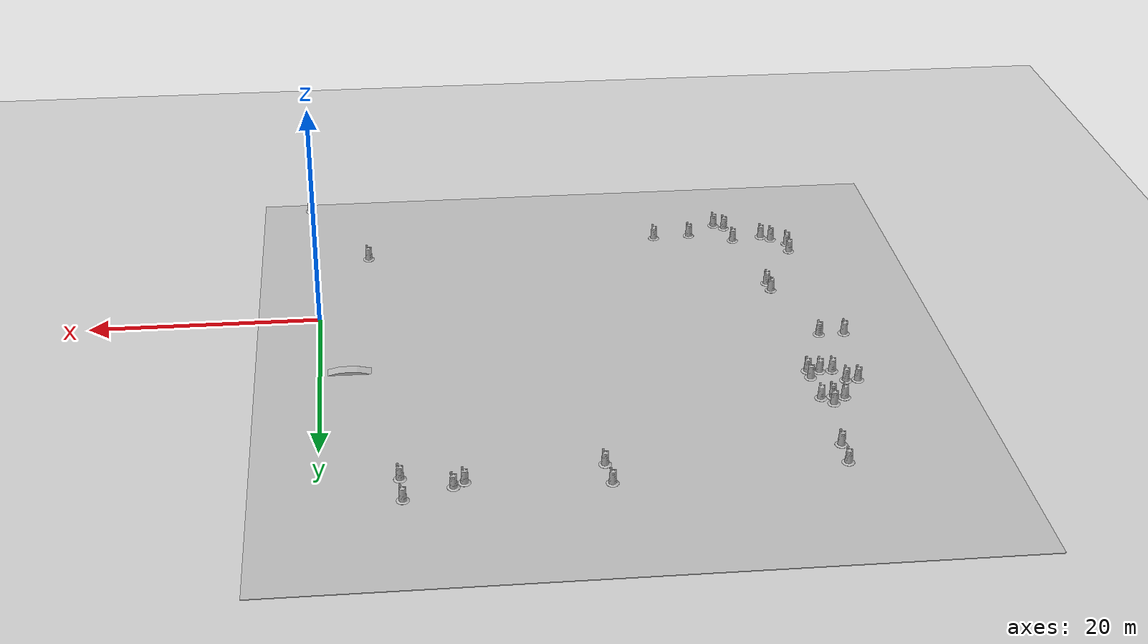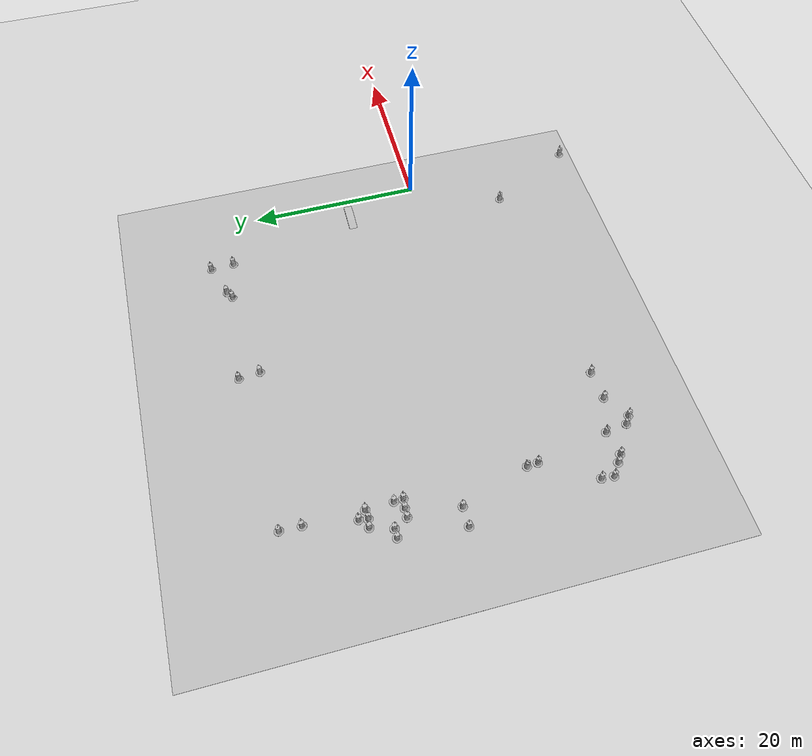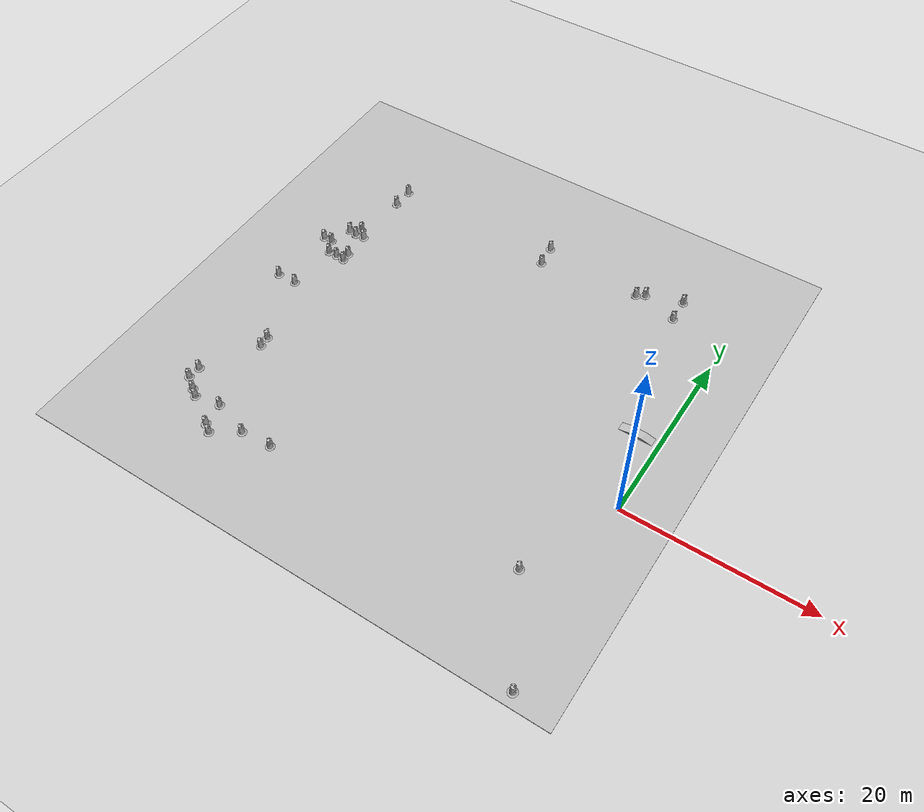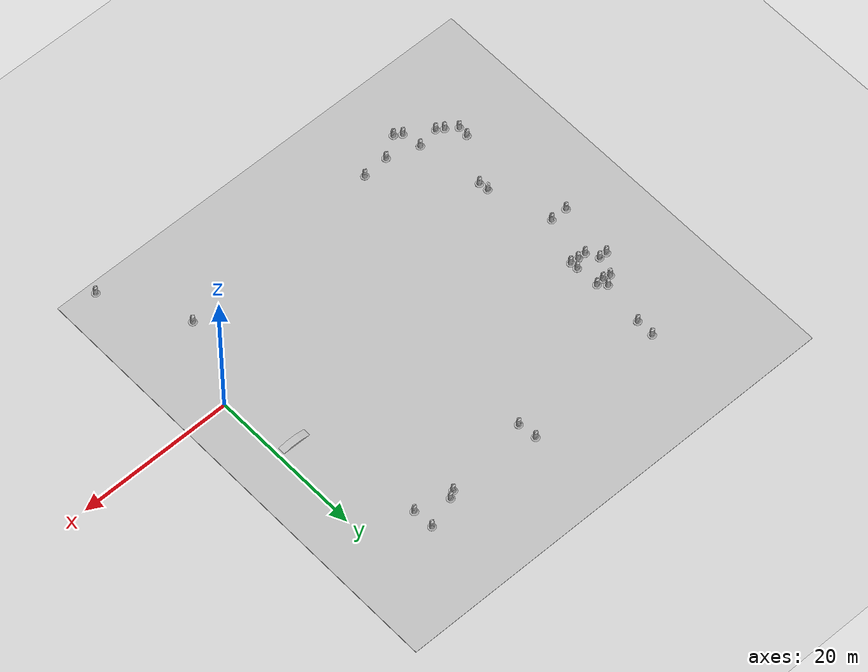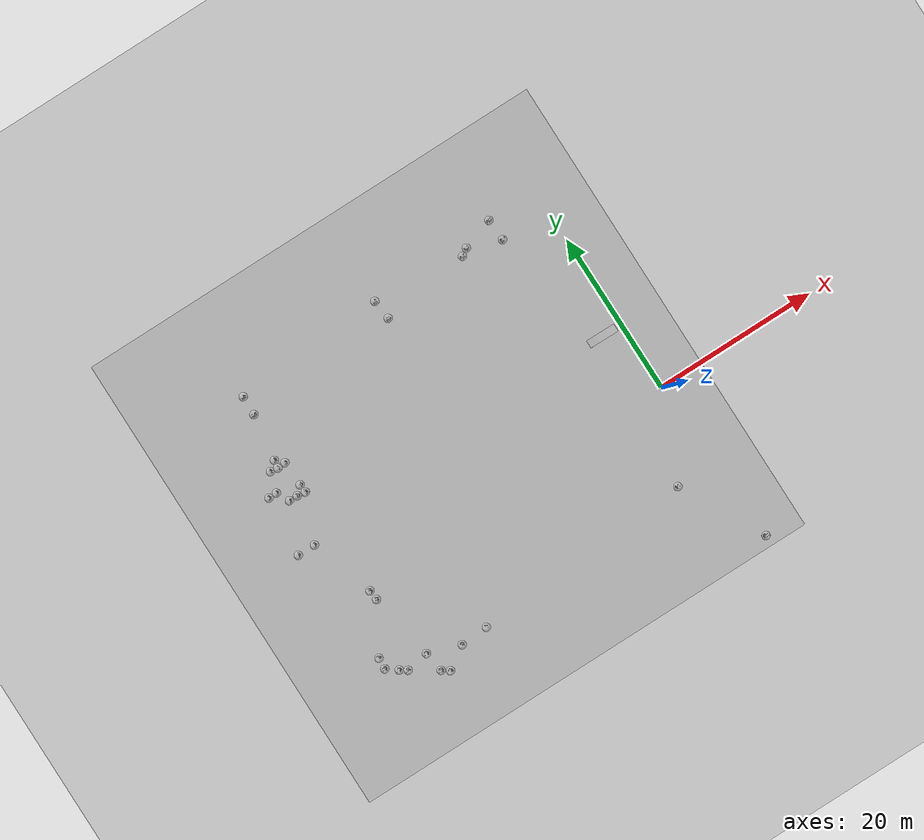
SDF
<sdf version="1.7">
 <world name="default">
  <light name="sun" type="directional">
   <pose>0 0 10 0 -0 0</pose>
   <diffuse>0.8 0.8 0.8 1</diffuse>
   <specular>0.2 0.2 0.2 1</specular>
   <attenuation>
    <range>1000</range>
    <constant>0.9</constant>
    <linear>0.01</linear>
    <quadratic>0.001</quadratic>
   </attenuation>
   <direction>-0.5 0.1 -0.9</direction>
   <spot><inner_angle>0</inner_angle><outer_angle>0</outer_angle><falloff>0</falloff></spot>
  </light>
  <model name="ground_plane">
   <static>1</static>
   <link name="link">
    <collision name="collision">
     <geometry><plane><normal>0 0 1</normal><size>100 100</size></plane></geometry>
     <surface>
      <contact><collide_bitmask>65535</collide_bitmask></contact>
      <friction><ode><mu>100</mu><mu2>50</mu2></ode></friction>
     </surface>
    </collision>
    <visual name="visual">
     <cast_shadows>0</cast_shadows>
     <geometry><plane><normal>0 0 1</normal><size>100 100</size></plane></geometry>
     <material>
      <script><uri>file://media/materials/scripts/gazebo.material</uri><name>Gazebo/Grey</name></script>
     </material>
    </visual>
   </link>
  </model>
  <gravity>0 0 -9.8</gravity>
  <magnetic_field>6e-06 2.3e-05 -4.2e-05</magnetic_field>
  <atmosphere type="adiabatic"/>
  <physics type="ode">
   <max_step_size>0.001</max_step_size>
   <real_time_factor>1</real_time_factor>
   <real_time_update_rate>1000</real_time_update_rate>
  </physics>
  <scene><ambient>0.4 0.4 0.4 1</ambient><background>0.7 0.7 0.7 1</background><shadows>1</shadows></scene>
  <spherical_coordinates>
   <surface_model>EARTH_WGS84</surface_model>
   <latitude_deg>0</latitude_deg>
   <longitude_deg>0</longitude_deg>
   <elevation>0</elevation>
   <heading_deg>0</heading_deg>
  </spherical_coordinates>
  <model name="igvc_track">
   <static>1</static>
   <link name="link">
    <collision name="collision"><geometry><box><size>58.9345 58.9345 0.0491121</size></box></geometry></collision>
    <visual name="visual">
     <cast_shadows>0</cast_shadows>
     <geometry><box><size>58.9345 58.9345 0.0491121</size></box></geometry>
     <material>
      <script>
       <uri>model://igvc_track/materials/scripts</uri>
       <uri>model://igvc_track/materials/textures</uri>
       <name>vrc/ground</name>
      </script>
     </material>
    </visual>
   </link>
   <link name="link2">
    <collision name="collision"><geometry><box><size>58.9345 58.9345 0.0491121</size></box></geometry></collision>
    <visual name="visual">
     <cast_shadows>0</cast_shadows>
     <geometry><box><size>58.9345 58.9345 0.0687569</size></box></geometry>
     <material>
      <script>
       <uri>model://igvc_track/materials/scripts</uri>
       <uri>model://igvc_track/materials/textures</uri>
       <name>vrc/track</name>
      </script>
     </material>
    </visual>
   </link>
   <pose>-24.0772 7.53186 0 0 -0 0</pose>
  </model>
  <model name="Construction Barrel">
   <link name="link">
    <inertial>
     <pose>0 0 0.4 0 -0 0</pose>
     <mass>500</mass>
     <inertia><ixx>51.2096</ixx><iyy>51.2096</iyy><izz>25</izz><ixy>0</ixy><ixz>0</ixz><iyz>0</iyz></inertia>
    </inertial>
    <collision name="collision">
     <geometry><mesh><uri>model://construction_barrel/meshes/construction_barrel.dae</uri></mesh></geometry>
    </collision>
    <visual name="visual">
     <geometry><mesh><uri>model://construction_barrel/meshes/construction_barrel.dae</uri></mesh></geometry>
    </visual>
   </link>
   <pose>0.974931 -20.6248 0.024555 3e-06 1e-06 0.000186</pose>
  </model>
  <model name="Construction Barrel_0">
   <link name="link">
    <inertial>
     <pose>0 0 0.4 0 -0 0</pose>
     <mass>500</mass>
     <inertia><ixx>51.2096</ixx><iyy>51.2096</iyy><izz>25</izz><ixy>0</ixy><ixz>0</ixz><iyz>0</iyz></inertia>
    </inertial>
    <collision name="collision">
     <geometry><mesh><uri>model://construction_barrel/meshes/construction_barrel.dae</uri></mesh></geometry>
    </collision>
    <visual name="visual">
     <geometry><mesh><uri>model://construction_barrel/meshes/construction_barrel.dae</uri></mesh></geometry>
    </visual>
   </link>
   <pose>-38.533 -13.6183 0.024556 -1e-06 -2e-06 0.007028</pose>
  </model>
  <model name="ramp">
   <static>1</static>
   <link name="link">
    <collision name="collision">
     <geometry><mesh><uri>model://ramp/meshes/ramp.dae</uri><scale>1 1 1</scale></mesh></geometry>
    </collision>
    <visual name="visual">
     <geometry><mesh><uri>model://ramp/meshes/ramp.dae</uri><scale>1 1 1</scale></mesh></geometry>
    </visual>
   </link>
   <pose>-2.50576 7.10959 0 0 0 -1.58093</pose>
  </model>
  <model name="Construction Barrel_1">
   <link name="link">
    <inertial>
     <pose>0 0 0.4 0 -0 0</pose>
     <mass>500</mass>
     <inertia><ixx>51.2096</ixx><iyy>51.2096</iyy><izz>25</izz><ixy>0</ixy><ixz>0</ixz><iyz>0</iyz></inertia>
    </inertial>
    <collision name="collision">
     <geometry><mesh><uri>model://construction_barrel/meshes/construction_barrel.dae</uri></mesh></geometry>
    </collision>
    <visual name="visual">
     <geometry><mesh><uri>model://construction_barrel/meshes/construction_barrel.dae</uri></mesh></geometry>
    </visual>
   </link>
   <pose>-38.9074 -11.1085 0.024555 3e-06 -0 0.000167</pose>
  </model>
  <model name="Construction Barrel_2">
   <link name="link">
    <inertial>
     <pose>0 0 0.4 0 -0 0</pose>
     <mass>500</mass>
     <inertia><ixx>51.2096</ixx><iyy>51.2096</iyy><izz>25</izz><ixy>0</ixy><ixz>0</ixz><iyz>0</iyz></inertia>
    </inertial>
    <collision name="collision">
     <geometry><mesh><uri>model://construction_barrel/meshes/construction_barrel.dae</uri></mesh></geometry>
    </collision>
    <visual name="visual">
     <geometry><mesh><uri>model://construction_barrel/meshes/construction_barrel.dae</uri></mesh></geometry>
    </visual>
   </link>
   <pose>-43.7577 -8.63429 0.024555 3e-06 -0 0.11968</pose>
  </model>
  <model name="Construction Barrel_3">
   <link name="link">
    <inertial>
     <pose>0 0 0.4 0 -0 0</pose>
     <mass>500</mass>
     <inertia><ixx>51.2096</ixx><iyy>51.2096</iyy><izz>25</izz><ixy>0</ixy><ixz>0</ixz><iyz>0</iyz></inertia>
    </inertial>
    <collision name="collision">
     <geometry><mesh><uri>model://construction_barrel/meshes/construction_barrel.dae</uri></mesh></geometry>
    </collision>
    <visual name="visual">
     <geometry><mesh><uri>model://construction_barrel/meshes/construction_barrel.dae</uri></mesh></geometry>
    </visual>
   </link>
   <pose>-43.8611 -10.0318 0.024555 -2e-06 -4e-06 -0.057822</pose>
  </model>
  <model name="Construction Barrel_4">
   <link name="link">
    <inertial>
     <pose>0 0 0.4 0 -0 0</pose>
     <mass>500</mass>
     <inertia><ixx>51.2096</ixx><iyy>51.2096</iyy><izz>25</izz><ixy>0</ixy><ixz>0</ixz><iyz>0</iyz></inertia>
    </inertial>
    <collision name="collision">
     <geometry><mesh><uri>model://construction_barrel/meshes/construction_barrel.dae</uri></mesh></geometry>
    </collision>
    <visual name="visual">
     <geometry><mesh><uri>model://construction_barrel/meshes/construction_barrel.dae</uri></mesh></geometry>
    </visual>
   </link>
   <pose>-41.6909 -11.5921 0.024555 3e-06 -0 0.011299</pose>
  </model>
  <model name="Construction Barrel_5">
   <link name="link">
    <inertial>
     <pose>0 0 0.4 0 -0 0</pose>
     <mass>500</mass>
     <inertia><ixx>51.2096</ixx><iyy>51.2096</iyy><izz>25</izz><ixy>0</ixy><ixz>0</ixz><iyz>0</iyz></inertia>
    </inertial>
    <collision name="collision">
     <geometry><mesh><uri>model://construction_barrel/meshes/construction_barrel.dae</uri></mesh></geometry>
    </collision>
    <visual name="visual">
     <geometry><mesh><uri>model://construction_barrel/meshes/construction_barrel.dae</uri></mesh></geometry>
    </visual>
   </link>
   <pose>-42.5303 -11.0218 0.024555 5e-06 -0 -0.032403</pose>
  </model>
  <model name="Construction Barrel_6">
   <link name="link">
    <inertial>
     <pose>0 0 0.4 0 -0 0</pose>
     <mass>500</mass>
     <inertia><ixx>51.2096</ixx><iyy>51.2096</iyy><izz>25</izz><ixy>0</ixy><ixz>0</ixz><iyz>0</iyz></inertia>
    </inertial>
    <collision name="collision">
     <geometry><mesh><uri>model://construction_barrel/meshes/construction_barrel.dae</uri></mesh></geometry>
    </collision>
    <visual name="visual">
     <geometry><mesh><uri>model://construction_barrel/meshes/construction_barrel.dae</uri></mesh></geometry>
    </visual>
   </link>
   <pose>-43.4737 13.5254 0.024556 2e-06 -0 -0.332293</pose>
  </model>
  <model name="Construction Barrel_7">
   <link name="link">
    <inertial>
     <pose>0 0 0.4 0 -0 0</pose>
     <mass>500</mass>
     <inertia><ixx>51.2096</ixx><iyy>51.2096</iyy><izz>25</izz><ixy>0</ixy><ixz>0</ixz><iyz>0</iyz></inertia>
    </inertial>
    <collision name="collision">
     <geometry><mesh><uri>model://construction_barrel/meshes/construction_barrel.dae</uri></mesh></geometry>
    </collision>
    <visual name="visual">
     <geometry><mesh><uri>model://construction_barrel/meshes/construction_barrel.dae</uri></mesh></geometry>
    </visual>
   </link>
   <pose>-40.4928 -1.60632 0.024555 0 -3e-06 0.838788</pose>
  </model>
  <model name="Construction Barrel_8">
   <link name="link">
    <inertial>
     <pose>0 0 0.4 0 -0 0</pose>
     <mass>500</mass>
     <inertia><ixx>51.2096</ixx><iyy>51.2096</iyy><izz>25</izz><ixy>0</ixy><ixz>0</ixz><iyz>0</iyz></inertia>
    </inertial>
    <collision name="collision">
     <geometry><mesh><uri>model://construction_barrel/meshes/construction_barrel.dae</uri></mesh></geometry>
    </collision>
    <visual name="visual">
     <geometry><mesh><uri>model://construction_barrel/meshes/construction_barrel.dae</uri></mesh></geometry>
    </visual>
   </link>
   <pose>-45.1878 6.21229 0.024555 -2e-06 -3e-06 0.00016</pose>
  </model>
  <model name="Construction Barrel_9">
   <link name="link">
    <inertial>
     <pose>0 0 0.4 0 -0 0</pose>
     <mass>500</mass>
     <inertia><ixx>51.2096</ixx><iyy>51.2096</iyy><izz>25</izz><ixy>0</ixy><ixz>0</ixz><iyz>0</iyz></inertia>
    </inertial>
    <collision name="collision">
     <geometry><mesh><uri>model://construction_barrel/meshes/construction_barrel.dae</uri></mesh></geometry>
    </collision>
    <visual name="visual">
     <geometry><mesh><uri>model://construction_barrel/meshes/construction_barrel.dae</uri></mesh></geometry>
    </visual>
   </link>
   <pose>-40.3738 -2.85059 0.024555 3e-06 -0 0.000151</pose>
  </model>
  <model name="Construction Barrel_10">
   <link name="link">
    <inertial>
     <pose>0 0 0.4 0 -0 0</pose>
     <mass>500</mass>
     <inertia><ixx>51.2096</ixx><iyy>51.2096</iyy><izz>25</izz><ixy>0</ixy><ixz>0</ixz><iyz>0</iyz></inertia>
    </inertial>
    <collision name="collision">
     <geometry><mesh><uri>model://construction_barrel/meshes/construction_barrel.dae</uri></mesh></geometry>
    </collision>
    <visual name="visual">
     <geometry><mesh><uri>model://construction_barrel/meshes/construction_barrel.dae</uri></mesh></geometry>
    </visual>
   </link>
   <pose>-43.0026 6.20755 0.024555 4e-06 1e-06 0.000147</pose>
  </model>
  <model name="Construction Barrel_11">
   <link name="link">
    <inertial>
     <pose>0 0 0.4 0 -0 0</pose>
     <mass>500</mass>
     <inertia><ixx>51.2096</ixx><iyy>51.2096</iyy><izz>25</izz><ixy>0</ixy><ixz>0</ixz><iyz>0</iyz></inertia>
    </inertial>
    <collision name="collision">
     <geometry><mesh><uri>model://construction_barrel/meshes/construction_barrel.dae</uri></mesh></geometry>
    </collision>
    <visual name="visual">
     <geometry><mesh><uri>model://construction_barrel/meshes/construction_barrel.dae</uri></mesh></geometry>
    </visual>
   </link>
   <pose>-34.9284 -12.4475 0.024555 -2e-06 -3e-06 -0.012905</pose>
  </model>
  <model name="Construction Barrel_12">
   <link name="link">
    <inertial>
     <pose>0 0 0.4 0 -0 0</pose>
     <mass>500</mass>
     <inertia><ixx>51.2096</ixx><iyy>51.2096</iyy><izz>25</izz><ixy>0</ixy><ixz>0</ixz><iyz>0</iyz></inertia>
    </inertial>
    <collision name="collision">
     <geometry><mesh><uri>model://construction_barrel/meshes/construction_barrel.dae</uri></mesh></geometry>
    </collision>
    <visual name="visual">
     <geometry><mesh><uri>model://construction_barrel/meshes/construction_barrel.dae</uri></mesh></geometry>
    </visual>
   </link>
   <pose>-37.6402 -14.2407 0.024555 -1e-06 -2e-06 0.045102</pose>
  </model>
  <model name="Construction Barrel_13">
   <link name="link">
    <inertial>
     <pose>0 0 0.4 0 -0 0</pose>
     <mass>500</mass>
     <inertia><ixx>51.2096</ixx><iyy>51.2096</iyy><izz>25</izz><ixy>0</ixy><ixz>0</ixz><iyz>0</iyz></inertia>
    </inertial>
    <collision name="collision">
     <geometry><mesh><uri>model://construction_barrel/meshes/construction_barrel.dae</uri></mesh></geometry>
    </collision>
    <visual name="visual">
     <geometry><mesh><uri>model://construction_barrel/meshes/construction_barrel.dae</uri></mesh></geometry>
    </visual>
   </link>
   <pose>-4.48173 -10.507 0.024555 4e-06 1e-06 0.000149</pose>
  </model>
  <model name="Construction Barrel_14">
   <link name="link">
    <inertial>
     <pose>0 0 0.4 0 -0 0</pose>
     <mass>500</mass>
     <inertia><ixx>51.2096</ixx><iyy>51.2096</iyy><izz>25</izz><ixy>0</ixy><ixz>0</ixz><iyz>0</iyz></inertia>
    </inertial>
    <collision name="collision">
     <geometry><mesh><uri>model://construction_barrel/meshes/construction_barrel.dae</uri></mesh></geometry>
    </collision>
    <visual name="visual">
     <geometry><mesh><uri>model://construction_barrel/meshes/construction_barrel.dae</uri></mesh></geometry>
    </visual>
   </link>
   <pose>-31.548 -12.2603 0.024555 -1e-06 -4e-06 0.053924</pose>
  </model>
  <model name="Construction Barrel_15">
   <link name="link">
    <inertial>
     <pose>0 0 0.4 0 -0 0</pose>
     <mass>500</mass>
     <inertia><ixx>51.2096</ixx><iyy>51.2096</iyy><izz>25</izz><ixy>0</ixy><ixz>0</ixz><iyz>0</iyz></inertia>
    </inertial>
    <collision name="collision">
     <geometry><mesh><uri>model://construction_barrel/meshes/construction_barrel.dae</uri></mesh></geometry>
    </collision>
    <visual name="visual">
     <geometry><mesh><uri>model://construction_barrel/meshes/construction_barrel.dae</uri></mesh></geometry>
    </visual>
   </link>
   <pose>-6.1597 23.9979 0.024555 -1e-06 -4e-06 -0.002057</pose>
  </model>
  <model name="Construction Barrel_16">
   <link name="link">
    <inertial>
     <pose>0 0 0.4 0 -0 0</pose>
     <mass>500</mass>
     <inertia><ixx>51.2096</ixx><iyy>51.2096</iyy><izz>25</izz><ixy>0</ixy><ixz>0</ixz><iyz>0</iyz></inertia>
    </inertial>
    <collision name="collision">
     <geometry><mesh><uri>model://construction_barrel/meshes/construction_barrel.dae</uri></mesh></geometry>
    </collision>
    <visual name="visual">
     <geometry><mesh><uri>model://construction_barrel/meshes/construction_barrel.dae</uri></mesh></geometry>
    </visual>
   </link>
   <pose>-40.6719 12.8683 0.024555 4e-06 -0 -0.074861</pose>
  </model>
  <model name="Construction Barrel_17">
   <link name="link">
    <inertial>
     <pose>0 0 0.4 0 -0 0</pose>
     <mass>500</mass>
     <inertia><ixx>51.2096</ixx><iyy>51.2096</iyy><izz>25</izz><ixy>0</ixy><ixz>0</ixz><iyz>0</iyz></inertia>
    </inertial>
    <collision name="collision">
     <geometry><mesh><uri>model://construction_barrel/meshes/construction_barrel.dae</uri></mesh></geometry>
    </collision>
    <visual name="visual">
     <geometry><mesh><uri>model://construction_barrel/meshes/construction_barrel.dae</uri></mesh></geometry>
    </visual>
   </link>
   <pose>-42.6749 12.0005 0.024555 3e-06 -0 0.000145</pose>
  </model>
  <model name="Construction Barrel_18">
   <link name="link">
    <inertial>
     <pose>0 0 0.4 0 -0 0</pose>
     <mass>500</mass>
     <inertia><ixx>51.2096</ixx><iyy>51.2096</iyy><izz>25</izz><ixy>0</ixy><ixz>0</ixz><iyz>0</iyz></inertia>
    </inertial>
    <collision name="collision">
     <geometry><mesh><uri>model://construction_barrel/meshes/construction_barrel.dae</uri></mesh></geometry>
    </collision>
    <visual name="visual">
     <geometry><mesh><uri>model://construction_barrel/meshes/construction_barrel.dae</uri></mesh></geometry>
    </visual>
   </link>
   <pose>-44.488 13.5214 0.024555 3e-06 1e-06 -0.088869</pose>
  </model>
  <model name="Construction Barrel_19">
   <link name="link">
    <inertial>
     <pose>0 0 0.4 0 -0 0</pose>
     <mass>500</mass>
     <inertia><ixx>51.2096</ixx><iyy>51.2096</iyy><izz>25</izz><ixy>0</ixy><ixz>0</ixz><iyz>0</iyz></inertia>
    </inertial>
    <collision name="collision">
     <geometry><mesh><uri>model://construction_barrel/meshes/construction_barrel.dae</uri></mesh></geometry>
    </collision>
    <visual name="visual">
     <geometry><mesh><uri>model://construction_barrel/meshes/construction_barrel.dae</uri></mesh></geometry>
    </visual>
   </link>
   <pose>-42.7305 15.9805 0.023629 0.000619 0.001958 0.247072</pose>
  </model>
  <model name="Construction Barrel_20">
   <link name="link">
    <inertial>
     <pose>0 0 0.4 0 -0 0</pose>
     <mass>500</mass>
     <inertia><ixx>51.2096</ixx><iyy>51.2096</iyy><izz>25</izz><ixy>0</ixy><ixz>0</ixz><iyz>0</iyz></inertia>
    </inertial>
    <collision name="collision">
     <geometry><mesh><uri>model://construction_barrel/meshes/construction_barrel.dae</uri></mesh></geometry>
    </collision>
    <visual name="visual">
     <geometry><mesh><uri>model://construction_barrel/meshes/construction_barrel.dae</uri></mesh></geometry>
    </visual>
   </link>
   <pose>-41.7997 15.8482 0.051717 0.031242 0.043508 0.073899</pose>
  </model>
  <model name="Construction Barrel_21">
   <link name="link">
    <inertial>
     <pose>0 0 0.4 0 -0 0</pose>
     <mass>500</mass>
     <inertia><ixx>51.2096</ixx><iyy>51.2096</iyy><izz>25</izz><ixy>0</ixy><ixz>0</ixz><iyz>0</iyz></inertia>
    </inertial>
    <collision name="collision">
     <geometry><mesh><uri>model://construction_barrel/meshes/construction_barrel.dae</uri></mesh></geometry>
    </collision>
    <visual name="visual">
     <geometry><mesh><uri>model://construction_barrel/meshes/construction_barrel.dae</uri></mesh></geometry>
    </visual>
   </link>
   <pose>-41.65 16.8065 0.024047 0.000549 2e-06 -0.016765</pose>
  </model>
  <model name="Construction Barrel_22">
   <link name="link">
    <inertial>
     <pose>0 0 0.4 0 -0 0</pose>
     <mass>500</mass>
     <inertia><ixx>51.2096</ixx><iyy>51.2096</iyy><izz>25</izz><ixy>0</ixy><ixz>0</ixz><iyz>0</iyz></inertia>
    </inertial>
    <collision name="collision">
     <geometry><mesh><uri>model://construction_barrel/meshes/construction_barrel.dae</uri></mesh></geometry>
    </collision>
    <visual name="visual">
     <geometry><mesh><uri>model://construction_barrel/meshes/construction_barrel.dae</uri></mesh></geometry>
    </visual>
   </link>
   <pose>-40.7846 15.9349 0.024556 -1e-06 -1e-06 -0.185832</pose>
  </model>
  <model name="Construction Barrel_23">
   <link name="link">
    <inertial>
     <pose>0 0 0.4 0 -0 0</pose>
     <mass>500</mass>
     <inertia><ixx>51.2096</ixx><iyy>51.2096</iyy><izz>25</izz><ixy>0</ixy><ixz>0</ixz><iyz>0</iyz></inertia>
    </inertial>
    <collision name="collision">
     <geometry><mesh><uri>model://construction_barrel/meshes/construction_barrel.dae</uri></mesh></geometry>
    </collision>
    <visual name="visual">
     <geometry><mesh><uri>model://construction_barrel/meshes/construction_barrel.dae</uri></mesh></geometry>
    </visual>
   </link>
   <pose>-40.7945 22.4761 0.024555 -2e-06 -3e-06 0.009944</pose>
  </model>
  <model name="Construction Barrel_24">
   <link name="link">
    <inertial>
     <pose>0 0 0.4 0 -0 0</pose>
     <mass>500</mass>
     <inertia><ixx>51.2096</ixx><iyy>51.2096</iyy><izz>25</izz><ixy>0</ixy><ixz>0</ixz><iyz>0</iyz></inertia>
    </inertial>
    <collision name="collision">
     <geometry><mesh><uri>model://construction_barrel/meshes/construction_barrel.dae</uri></mesh></geometry>
    </collision>
    <visual name="visual">
     <geometry><mesh><uri>model://construction_barrel/meshes/construction_barrel.dae</uri></mesh></geometry>
    </visual>
   </link>
   <pose>-40.615 11.8564 0.024555 4e-06 -0 -0.034127</pose>
  </model>
  <model name="Construction Barrel_25">
   <link name="link">
    <inertial>
     <pose>0 0 0.4 0 -0 0</pose>
     <mass>500</mass>
     <inertia><ixx>51.2096</ixx><iyy>51.2096</iyy><izz>25</izz><ixy>0</ixy><ixz>0</ixz><iyz>0</iyz></inertia>
    </inertial>
    <collision name="collision">
     <geometry><mesh><uri>model://construction_barrel/meshes/construction_barrel.dae</uri></mesh></geometry>
    </collision>
    <visual name="visual">
     <geometry><mesh><uri>model://construction_barrel/meshes/construction_barrel.dae</uri></mesh></geometry>
    </visual>
   </link>
   <pose>-41.6282 11.9837 0.024556 2e-06 -0 -0.120433</pose>
  </model>
  <model name="Construction Barrel_26">
   <link name="link">
    <inertial>
     <pose>0 0 0.4 0 -0 0</pose>
     <mass>500</mass>
     <inertia><ixx>51.2096</ixx><iyy>51.2096</iyy><izz>25</izz><ixy>0</ixy><ixz>0</ixz><iyz>0</iyz></inertia>
    </inertial>
    <collision name="collision">
     <geometry><mesh><uri>model://construction_barrel/meshes/construction_barrel.dae</uri></mesh></geometry>
    </collision>
    <visual name="visual">
     <geometry><mesh><uri>model://construction_barrel/meshes/construction_barrel.dae</uri></mesh></geometry>
    </visual>
   </link>
   <pose>-40.7467 24.8401 0.024556 0 -1e-06 -0.416027</pose>
  </model>
  <model name="Construction Barrel_27">
   <link name="link">
    <inertial>
     <pose>0 0 0.4 0 -0 0</pose>
     <mass>500</mass>
     <inertia><ixx>51.2096</ixx><iyy>51.2096</iyy><izz>25</izz><ixy>0</ixy><ixz>0</ixz><iyz>0</iyz></inertia>
    </inertial>
    <collision name="collision">
     <geometry><mesh><uri>model://construction_barrel/meshes/construction_barrel.dae</uri></mesh></geometry>
    </collision>
    <visual name="visual">
     <geometry><mesh><uri>model://construction_barrel/meshes/construction_barrel.dae</uri></mesh></geometry>
    </visual>
   </link>
   <pose>-22.2307 25.9174 0.024555 3e-06 -0 0.000122</pose>
  </model>
  <model name="Construction Barrel_28">
   <link name="link">
    <inertial>
     <pose>0 0 0.4 0 -0 0</pose>
     <mass>500</mass>
     <inertia><ixx>51.2096</ixx><iyy>51.2096</iyy><izz>25</izz><ixy>0</ixy><ixz>0</ixz><iyz>0</iyz></inertia>
    </inertial>
    <collision name="collision">
     <geometry><mesh><uri>model://construction_barrel/meshes/construction_barrel.dae</uri></mesh></geometry>
    </collision>
    <visual name="visual">
     <geometry><mesh><uri>model://construction_barrel/meshes/construction_barrel.dae</uri></mesh></geometry>
    </visual>
   </link>
   <pose>-21.9833 23.4814 0.024555 -1e-06 -2e-06 0.000121</pose>
  </model>
  <model name="Construction Barrel_29">
   <link name="link">
    <inertial>
     <pose>0 0 0.4 0 -0 0</pose>
     <mass>500</mass>
     <inertia><ixx>51.2096</ixx><iyy>51.2096</iyy><izz>25</izz><ixy>0</ixy><ixz>0</ixz><iyz>0</iyz></inertia>
    </inertial>
    <collision name="collision">
     <geometry><mesh><uri>model://construction_barrel/meshes/construction_barrel.dae</uri></mesh></geometry>
    </collision>
    <visual name="visual">
     <geometry><mesh><uri>model://construction_barrel/meshes/construction_barrel.dae</uri></mesh></geometry>
    </visual>
   </link>
   <pose>-11.0313 24.8809 0.024555 3e-06 -0 -9.2e-05</pose>
  </model>
  <model name="Construction Barrel_30">
   <link name="link">
    <inertial>
     <pose>0 0 0.4 0 -0 0</pose>
     <mass>500</mass>
     <inertia><ixx>51.2096</ixx><iyy>51.2096</iyy><izz>25</izz><ixy>0</ixy><ixz>0</ixz><iyz>0</iyz></inertia>
    </inertial>
    <collision name="collision">
     <geometry><mesh><uri>model://construction_barrel/meshes/construction_barrel.dae</uri></mesh></geometry>
    </collision>
    <visual name="visual">
     <geometry><mesh><uri>model://construction_barrel/meshes/construction_barrel.dae</uri></mesh></geometry>
    </visual>
   </link>
   <pose>-10.1635 25.4128 0.024555 3e-06 -0 0.019631</pose>
  </model>
  <model name="Construction Barrel_31">
   <link name="link">
    <inertial>
     <pose>0 0 0.4 0 -0 0</pose>
     <mass>500</mass>
     <inertia><ixx>51.2096</ixx><iyy>51.2096</iyy><izz>25</izz><ixy>0</ixy><ixz>0</ixz><iyz>0</iyz></inertia>
    </inertial>
    <collision name="collision">
     <geometry><mesh><uri>model://construction_barrel/meshes/construction_barrel.dae</uri></mesh></geometry>
    </collision>
    <visual name="visual">
     <geometry><mesh><uri>model://construction_barrel/meshes/construction_barrel.dae</uri></mesh></geometry>
    </visual>
   </link>
   <pose>-6.2768 26.6974 0.024556 -1e-06 -3e-06 0.000119</pose>
  </model>
  <audio><device>default</device></audio>
 </world>
</sdf>
